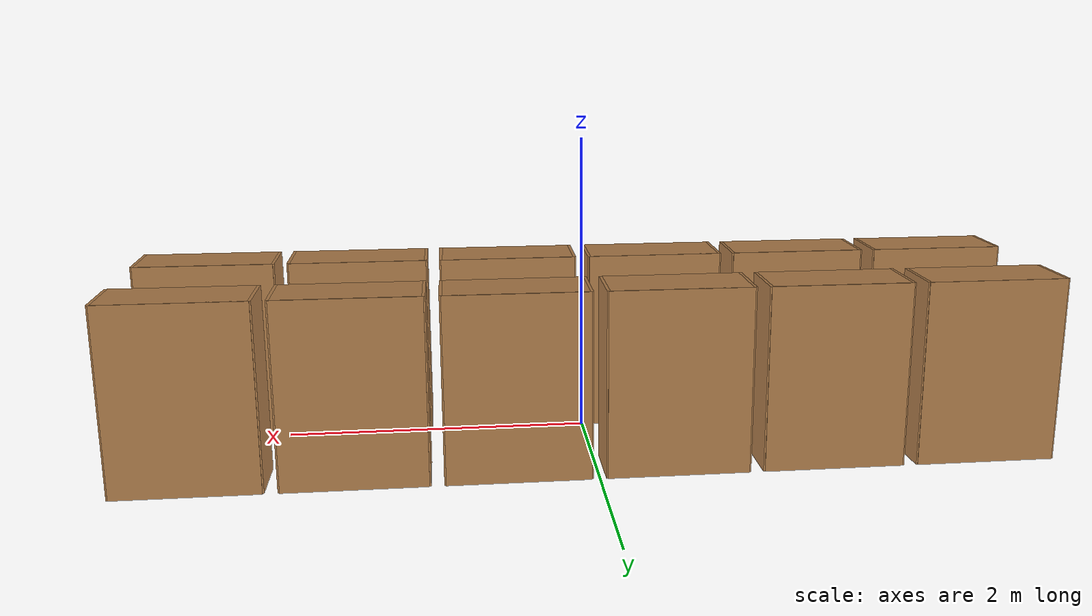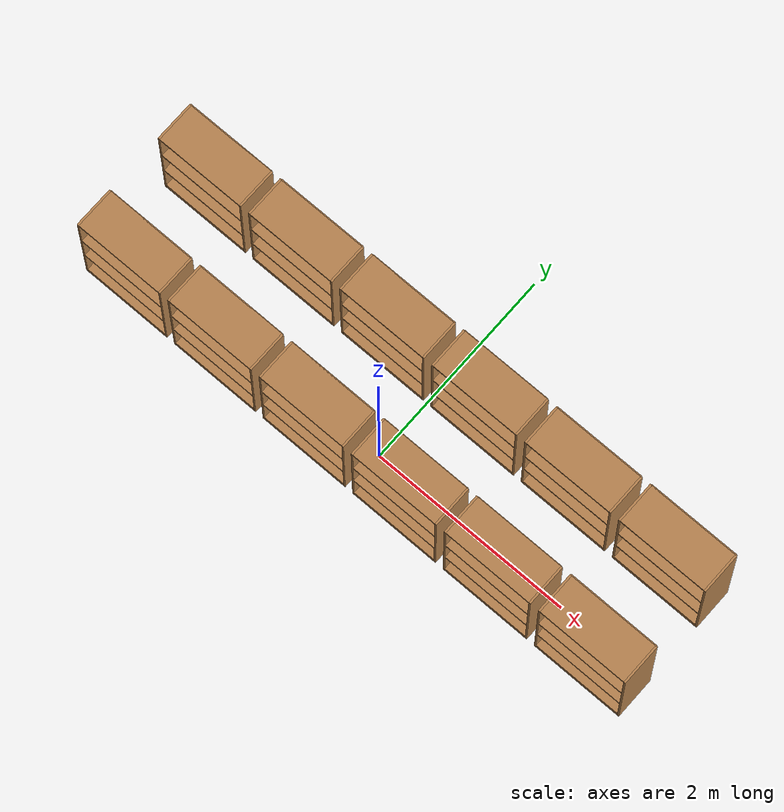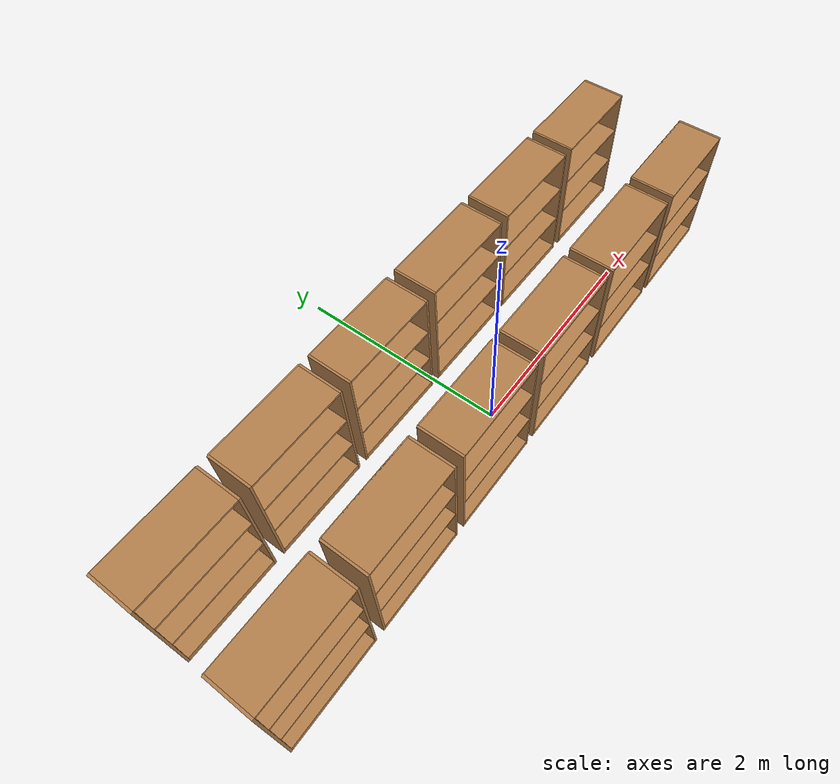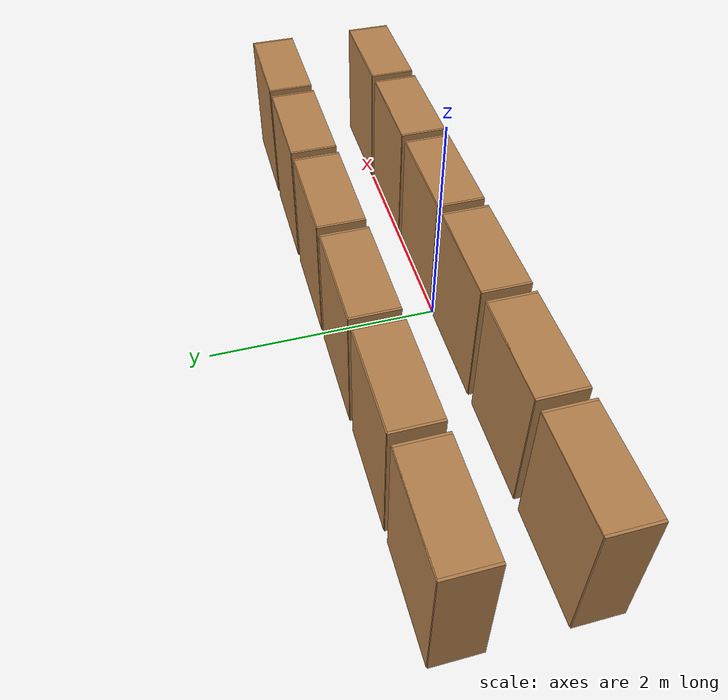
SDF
<sdf version="1.6">
 <model name="5Bookshelves">
  <model name="BookshelfRow_1">
   <model name="bookshelf">
    <static>1</static>
    <link name="link">
     <inertial><mass>1</mass></inertial>
     <collision name="back">
      <pose>0 0.005 0.6 0 -0 0</pose>
      <geometry><box><size>0.9 0.01 1.2</size></box></geometry>
     </collision>
     <visual name="visual1">
      <pose>0 0.005 0.6 0 -0 0</pose>
      <geometry><box><size>0.9 0.01 1.2</size></box></geometry>
      <material>
       <script><uri>file://media/materials/scripts/gazebo.material</uri><name>Gazebo/Wood</name></script>
      </material>
     </visual>
     <collision name="left_side">
      <pose>0.45 -0.195 0.6 0 -0 0</pose>
      <geometry><box><size>0.02 0.4 1.2</size></box></geometry>
     </collision>
     <visual name="visual2">
      <pose>0.45 -0.195 0.6 0 -0 0</pose>
      <geometry><box><size>0.02 0.4 1.2</size></box></geometry>
      <material>
       <script><uri>file://media/materials/scripts/gazebo.material</uri><name>Gazebo/Wood</name></script>
      </material>
     </visual>
     <collision name="right_side">
      <pose>-0.45 -0.195 0.6 0 -0 0</pose>
      <geometry><box><size>0.02 0.4 1.2</size></box></geometry>
     </collision>
     <visual name="visual3">
      <pose>-0.45 -0.195 0.6 0 -0 0</pose>
      <geometry><box><size>0.02 0.4 1.2</size></box></geometry>
      <material>
       <script><uri>file://media/materials/scripts/gazebo.material</uri><name>Gazebo/Wood</name></script>
      </material>
     </visual>
     <collision name="bottom">
      <pose>0 -0.195 0.03 0 -0 0</pose>
      <geometry><box><size>0.88 0.4 0.06</size></box></geometry>
     </collision>
     <visual name="visual4">
      <pose>0 -0.195 0.03 0 -0 0</pose>
      <geometry><box><size>0.88 0.4 0.06</size></box></geometry>
      <material>
       <script><uri>file://media/materials/scripts/gazebo.material</uri><name>Gazebo/Wood</name></script>
      </material>
     </visual>
     <collision name="top">
      <pose>0 -0.195 1.19 0 -0 0</pose>
      <geometry><box><size>0.88 0.4 0.02</size></box></geometry>
     </collision>
     <visual name="visual5">
      <pose>0 -0.195 1.19 0 -0 0</pose>
      <geometry><box><size>0.88 0.4 0.02</size></box></geometry>
      <material>
       <script><uri>file://media/materials/scripts/gazebo.material</uri><name>Gazebo/Wood</name></script>
      </material>
     </visual>
     <collision name="low_shelf">
      <pose>0 -0.195 0.43 0 -0 0</pose>
      <geometry><box><size>0.88 0.4 0.02</size></box></geometry>
     </collision>
     <visual name="visual6">
      <pose>0 -0.195 0.43 0 -0 0</pose>
      <geometry><box><size>0.88 0.4 0.02</size></box></geometry>
      <material>
       <script><uri>file://media/materials/scripts/gazebo.material</uri><name>Gazebo/Wood</name></script>
      </material>
     </visual>
     <collision name="high_shelf">
      <pose>0 -0.195 0.8 0 -0 0</pose>
      <geometry><box><size>0.88 0.4 0.02</size></box></geometry>
     </collision>
     <visual name="visual7">
      <pose>0 -0.195 0.8 0 -0 0</pose>
      <geometry><box><size>0.88 0.4 0.02</size></box></geometry>
      <material>
       <script><uri>file://media/materials/scripts/gazebo.material</uri><name>Gazebo/Wood</name></script>
      </material>
     </visual>
    </link>
    <pose>-2.5 0 0 0 -0 0</pose>
   </model>
   <model name="bookshelf_0">
    <static>1</static>
    <link name="link">
     <inertial><mass>1</mass></inertial>
     <collision name="back">
      <pose>0 0.005 0.6 0 -0 0</pose>
      <geometry><box><size>0.9 0.01 1.2</size></box></geometry>
     </collision>
     <visual name="visual1">
      <pose>0 0.005 0.6 0 -0 0</pose>
      <geometry><box><size>0.9 0.01 1.2</size></box></geometry>
      <material>
       <script><uri>file://media/materials/scripts/gazebo.material</uri><name>Gazebo/Wood</name></script>
      </material>
     </visual>
     <collision name="left_side">
      <pose>0.45 -0.195 0.6 0 -0 0</pose>
      <geometry><box><size>0.02 0.4 1.2</size></box></geometry>
     </collision>
     <visual name="visual2">
      <pose>0.45 -0.195 0.6 0 -0 0</pose>
      <geometry><box><size>0.02 0.4 1.2</size></box></geometry>
      <material>
       <script><uri>file://media/materials/scripts/gazebo.material</uri><name>Gazebo/Wood</name></script>
      </material>
     </visual>
     <collision name="right_side">
      <pose>-0.45 -0.195 0.6 0 -0 0</pose>
      <geometry><box><size>0.02 0.4 1.2</size></box></geometry>
     </collision>
     <visual name="visual3">
      <pose>-0.45 -0.195 0.6 0 -0 0</pose>
      <geometry><box><size>0.02 0.4 1.2</size></box></geometry>
      <material>
       <script><uri>file://media/materials/scripts/gazebo.material</uri><name>Gazebo/Wood</name></script>
      </material>
     </visual>
     <collision name="bottom">
      <pose>0 -0.195 0.03 0 -0 0</pose>
      <geometry><box><size>0.88 0.4 0.06</size></box></geometry>
     </collision>
     <visual name="visual4">
      <pose>0 -0.195 0.03 0 -0 0</pose>
      <geometry><box><size>0.88 0.4 0.06</size></box></geometry>
      <material>
       <script><uri>file://media/materials/scripts/gazebo.material</uri><name>Gazebo/Wood</name></script>
      </material>
     </visual>
     <collision name="top">
      <pose>0 -0.195 1.19 0 -0 0</pose>
      <geometry><box><size>0.88 0.4 0.02</size></box></geometry>
     </collision>
     <visual name="visual5">
      <pose>0 -0.195 1.19 0 -0 0</pose>
      <geometry><box><size>0.88 0.4 0.02</size></box></geometry>
      <material>
       <script><uri>file://media/materials/scripts/gazebo.material</uri><name>Gazebo/Wood</name></script>
      </material>
     </visual>
     <collision name="low_shelf">
      <pose>0 -0.195 0.43 0 -0 0</pose>
      <geometry><box><size>0.88 0.4 0.02</size></box></geometry>
     </collision>
     <visual name="visual6">
      <pose>0 -0.195 0.43 0 -0 0</pose>
      <geometry><box><size>0.88 0.4 0.02</size></box></geometry>
      <material>
       <script><uri>file://media/materials/scripts/gazebo.material</uri><name>Gazebo/Wood</name></script>
      </material>
     </visual>
     <collision name="high_shelf">
      <pose>0 -0.195 0.8 0 -0 0</pose>
      <geometry><box><size>0.88 0.4 0.02</size></box></geometry>
     </collision>
     <visual name="visual7">
      <pose>0 -0.195 0.8 0 -0 0</pose>
      <geometry><box><size>0.88 0.4 0.02</size></box></geometry>
      <material>
       <script><uri>file://media/materials/scripts/gazebo.material</uri><name>Gazebo/Wood</name></script>
      </material>
     </visual>
    </link>
    <pose>-1.5 0 0 0 -0 0</pose>
   </model>
   <model name="bookshelf_1">
    <static>1</static>
    <link name="link">
     <inertial><mass>1</mass></inertial>
     <collision name="back">
      <pose>0 0.005 0.6 0 -0 0</pose>
      <geometry><box><size>0.9 0.01 1.2</size></box></geometry>
     </collision>
     <visual name="visual1">
      <pose>0 0.005 0.6 0 -0 0</pose>
      <geometry><box><size>0.9 0.01 1.2</size></box></geometry>
      <material>
       <script><uri>file://media/materials/scripts/gazebo.material</uri><name>Gazebo/Wood</name></script>
      </material>
     </visual>
     <collision name="left_side">
      <pose>0.45 -0.195 0.6 0 -0 0</pose>
      <geometry><box><size>0.02 0.4 1.2</size></box></geometry>
     </collision>
     <visual name="visual2">
      <pose>0.45 -0.195 0.6 0 -0 0</pose>
      <geometry><box><size>0.02 0.4 1.2</size></box></geometry>
      <material>
       <script><uri>file://media/materials/scripts/gazebo.material</uri><name>Gazebo/Wood</name></script>
      </material>
     </visual>
     <collision name="right_side">
      <pose>-0.45 -0.195 0.6 0 -0 0</pose>
      <geometry><box><size>0.02 0.4 1.2</size></box></geometry>
     </collision>
     <visual name="visual3">
      <pose>-0.45 -0.195 0.6 0 -0 0</pose>
      <geometry><box><size>0.02 0.4 1.2</size></box></geometry>
      <material>
       <script><uri>file://media/materials/scripts/gazebo.material</uri><name>Gazebo/Wood</name></script>
      </material>
     </visual>
     <collision name="bottom">
      <pose>0 -0.195 0.03 0 -0 0</pose>
      <geometry><box><size>0.88 0.4 0.06</size></box></geometry>
     </collision>
     <visual name="visual4">
      <pose>0 -0.195 0.03 0 -0 0</pose>
      <geometry><box><size>0.88 0.4 0.06</size></box></geometry>
      <material>
       <script><uri>file://media/materials/scripts/gazebo.material</uri><name>Gazebo/Wood</name></script>
      </material>
     </visual>
     <collision name="top">
      <pose>0 -0.195 1.19 0 -0 0</pose>
      <geometry><box><size>0.88 0.4 0.02</size></box></geometry>
     </collision>
     <visual name="visual5">
      <pose>0 -0.195 1.19 0 -0 0</pose>
      <geometry><box><size>0.88 0.4 0.02</size></box></geometry>
      <material>
       <script><uri>file://media/materials/scripts/gazebo.material</uri><name>Gazebo/Wood</name></script>
      </material>
     </visual>
     <collision name="low_shelf">
      <pose>0 -0.195 0.43 0 -0 0</pose>
      <geometry><box><size>0.88 0.4 0.02</size></box></geometry>
     </collision>
     <visual name="visual6">
      <pose>0 -0.195 0.43 0 -0 0</pose>
      <geometry><box><size>0.88 0.4 0.02</size></box></geometry>
      <material>
       <script><uri>file://media/materials/scripts/gazebo.material</uri><name>Gazebo/Wood</name></script>
      </material>
     </visual>
     <collision name="high_shelf">
      <pose>0 -0.195 0.8 0 -0 0</pose>
      <geometry><box><size>0.88 0.4 0.02</size></box></geometry>
     </collision>
     <visual name="visual7">
      <pose>0 -0.195 0.8 0 -0 0</pose>
      <geometry><box><size>0.88 0.4 0.02</size></box></geometry>
      <material>
       <script><uri>file://media/materials/scripts/gazebo.material</uri><name>Gazebo/Wood</name></script>
      </material>
     </visual>
    </link>
    <pose>-0.5 0 0 0 -0 0</pose>
   </model>
   <model name="bookshelf_2">
    <static>1</static>
    <link name="link">
     <inertial><mass>1</mass></inertial>
     <collision name="back">
      <pose>0 0.005 0.6 0 -0 0</pose>
      <geometry><box><size>0.9 0.01 1.2</size></box></geometry>
     </collision>
     <visual name="visual1">
      <pose>0 0.005 0.6 0 -0 0</pose>
      <geometry><box><size>0.9 0.01 1.2</size></box></geometry>
      <material>
       <script><uri>file://media/materials/scripts/gazebo.material</uri><name>Gazebo/Wood</name></script>
      </material>
     </visual>
     <collision name="left_side">
      <pose>0.45 -0.195 0.6 0 -0 0</pose>
      <geometry><box><size>0.02 0.4 1.2</size></box></geometry>
     </collision>
     <visual name="visual2">
      <pose>0.45 -0.195 0.6 0 -0 0</pose>
      <geometry><box><size>0.02 0.4 1.2</size></box></geometry>
      <material>
       <script><uri>file://media/materials/scripts/gazebo.material</uri><name>Gazebo/Wood</name></script>
      </material>
     </visual>
     <collision name="right_side">
      <pose>-0.45 -0.195 0.6 0 -0 0</pose>
      <geometry><box><size>0.02 0.4 1.2</size></box></geometry>
     </collision>
     <visual name="visual3">
      <pose>-0.45 -0.195 0.6 0 -0 0</pose>
      <geometry><box><size>0.02 0.4 1.2</size></box></geometry>
      <material>
       <script><uri>file://media/materials/scripts/gazebo.material</uri><name>Gazebo/Wood</name></script>
      </material>
     </visual>
     <collision name="bottom">
      <pose>0 -0.195 0.03 0 -0 0</pose>
      <geometry><box><size>0.88 0.4 0.06</size></box></geometry>
     </collision>
     <visual name="visual4">
      <pose>0 -0.195 0.03 0 -0 0</pose>
      <geometry><box><size>0.88 0.4 0.06</size></box></geometry>
      <material>
       <script><uri>file://media/materials/scripts/gazebo.material</uri><name>Gazebo/Wood</name></script>
      </material>
     </visual>
     <collision name="top">
      <pose>0 -0.195 1.19 0 -0 0</pose>
      <geometry><box><size>0.88 0.4 0.02</size></box></geometry>
     </collision>
     <visual name="visual5">
      <pose>0 -0.195 1.19 0 -0 0</pose>
      <geometry><box><size>0.88 0.4 0.02</size></box></geometry>
      <material>
       <script><uri>file://media/materials/scripts/gazebo.material</uri><name>Gazebo/Wood</name></script>
      </material>
     </visual>
     <collision name="low_shelf">
      <pose>0 -0.195 0.43 0 -0 0</pose>
      <geometry><box><size>0.88 0.4 0.02</size></box></geometry>
     </collision>
     <visual name="visual6">
      <pose>0 -0.195 0.43 0 -0 0</pose>
      <geometry><box><size>0.88 0.4 0.02</size></box></geometry>
      <material>
       <script><uri>file://media/materials/scripts/gazebo.material</uri><name>Gazebo/Wood</name></script>
      </material>
     </visual>
     <collision name="high_shelf">
      <pose>0 -0.195 0.8 0 -0 0</pose>
      <geometry><box><size>0.88 0.4 0.02</size></box></geometry>
     </collision>
     <visual name="visual7">
      <pose>0 -0.195 0.8 0 -0 0</pose>
      <geometry><box><size>0.88 0.4 0.02</size></box></geometry>
      <material>
       <script><uri>file://media/materials/scripts/gazebo.material</uri><name>Gazebo/Wood</name></script>
      </material>
     </visual>
    </link>
    <pose>0.5 0 0 0 -0 0</pose>
   </model>
   <model name="bookshelf_3">
    <static>1</static>
    <link name="link">
     <inertial><mass>1</mass></inertial>
     <collision name="back">
      <pose>0 0.005 0.6 0 -0 0</pose>
      <geometry><box><size>0.9 0.01 1.2</size></box></geometry>
     </collision>
     <visual name="visual1">
      <pose>0 0.005 0.6 0 -0 0</pose>
      <geometry><box><size>0.9 0.01 1.2</size></box></geometry>
      <material>
       <script><uri>file://media/materials/scripts/gazebo.material</uri><name>Gazebo/Wood</name></script>
      </material>
     </visual>
     <collision name="left_side">
      <pose>0.45 -0.195 0.6 0 -0 0</pose>
      <geometry><box><size>0.02 0.4 1.2</size></box></geometry>
     </collision>
     <visual name="visual2">
      <pose>0.45 -0.195 0.6 0 -0 0</pose>
      <geometry><box><size>0.02 0.4 1.2</size></box></geometry>
      <material>
       <script><uri>file://media/materials/scripts/gazebo.material</uri><name>Gazebo/Wood</name></script>
      </material>
     </visual>
     <collision name="right_side">
      <pose>-0.45 -0.195 0.6 0 -0 0</pose>
      <geometry><box><size>0.02 0.4 1.2</size></box></geometry>
     </collision>
     <visual name="visual3">
      <pose>-0.45 -0.195 0.6 0 -0 0</pose>
      <geometry><box><size>0.02 0.4 1.2</size></box></geometry>
      <material>
       <script><uri>file://media/materials/scripts/gazebo.material</uri><name>Gazebo/Wood</name></script>
      </material>
     </visual>
     <collision name="bottom">
      <pose>0 -0.195 0.03 0 -0 0</pose>
      <geometry><box><size>0.88 0.4 0.06</size></box></geometry>
     </collision>
     <visual name="visual4">
      <pose>0 -0.195 0.03 0 -0 0</pose>
      <geometry><box><size>0.88 0.4 0.06</size></box></geometry>
      <material>
       <script><uri>file://media/materials/scripts/gazebo.material</uri><name>Gazebo/Wood</name></script>
      </material>
     </visual>
     <collision name="top">
      <pose>0 -0.195 1.19 0 -0 0</pose>
      <geometry><box><size>0.88 0.4 0.02</size></box></geometry>
     </collision>
     <visual name="visual5">
      <pose>0 -0.195 1.19 0 -0 0</pose>
      <geometry><box><size>0.88 0.4 0.02</size></box></geometry>
      <material>
       <script><uri>file://media/materials/scripts/gazebo.material</uri><name>Gazebo/Wood</name></script>
      </material>
     </visual>
     <collision name="low_shelf">
      <pose>0 -0.195 0.43 0 -0 0</pose>
      <geometry><box><size>0.88 0.4 0.02</size></box></geometry>
     </collision>
     <visual name="visual6">
      <pose>0 -0.195 0.43 0 -0 0</pose>
      <geometry><box><size>0.88 0.4 0.02</size></box></geometry>
      <material>
       <script><uri>file://media/materials/scripts/gazebo.material</uri><name>Gazebo/Wood</name></script>
      </material>
     </visual>
     <collision name="high_shelf">
      <pose>0 -0.195 0.8 0 -0 0</pose>
      <geometry><box><size>0.88 0.4 0.02</size></box></geometry>
     </collision>
     <visual name="visual7">
      <pose>0 -0.195 0.8 0 -0 0</pose>
      <geometry><box><size>0.88 0.4 0.02</size></box></geometry>
      <material>
       <script><uri>file://media/materials/scripts/gazebo.material</uri><name>Gazebo/Wood</name></script>
      </material>
     </visual>
    </link>
    <pose>1.5 0 0 0 -0 0</pose>
   </model>
   <model name="bookshelf_4">
    <static>1</static>
    <link name="link">
     <inertial><mass>1</mass></inertial>
     <collision name="back">
      <pose>0 0.005 0.6 0 -0 0</pose>
      <geometry><box><size>0.9 0.01 1.2</size></box></geometry>
     </collision>
     <visual name="visual1">
      <pose>0 0.005 0.6 0 -0 0</pose>
      <geometry><box><size>0.9 0.01 1.2</size></box></geometry>
      <material>
       <script><uri>file://media/materials/scripts/gazebo.material</uri><name>Gazebo/Wood</name></script>
      </material>
     </visual>
     <collision name="left_side">
      <pose>0.45 -0.195 0.6 0 -0 0</pose>
      <geometry><box><size>0.02 0.4 1.2</size></box></geometry>
     </collision>
     <visual name="visual2">
      <pose>0.45 -0.195 0.6 0 -0 0</pose>
      <geometry><box><size>0.02 0.4 1.2</size></box></geometry>
      <material>
       <script><uri>file://media/materials/scripts/gazebo.material</uri><name>Gazebo/Wood</name></script>
      </material>
     </visual>
     <collision name="right_side">
      <pose>-0.45 -0.195 0.6 0 -0 0</pose>
      <geometry><box><size>0.02 0.4 1.2</size></box></geometry>
     </collision>
     <visual name="visual3">
      <pose>-0.45 -0.195 0.6 0 -0 0</pose>
      <geometry><box><size>0.02 0.4 1.2</size></box></geometry>
      <material>
       <script><uri>file://media/materials/scripts/gazebo.material</uri><name>Gazebo/Wood</name></script>
      </material>
     </visual>
     <collision name="bottom">
      <pose>0 -0.195 0.03 0 -0 0</pose>
      <geometry><box><size>0.88 0.4 0.06</size></box></geometry>
     </collision>
     <visual name="visual4">
      <pose>0 -0.195 0.03 0 -0 0</pose>
      <geometry><box><size>0.88 0.4 0.06</size></box></geometry>
      <material>
       <script><uri>file://media/materials/scripts/gazebo.material</uri><name>Gazebo/Wood</name></script>
      </material>
     </visual>
     <collision name="top">
      <pose>0 -0.195 1.19 0 -0 0</pose>
      <geometry><box><size>0.88 0.4 0.02</size></box></geometry>
     </collision>
     <visual name="visual5">
      <pose>0 -0.195 1.19 0 -0 0</pose>
      <geometry><box><size>0.88 0.4 0.02</size></box></geometry>
      <material>
       <script><uri>file://media/materials/scripts/gazebo.material</uri><name>Gazebo/Wood</name></script>
      </material>
     </visual>
     <collision name="low_shelf">
      <pose>0 -0.195 0.43 0 -0 0</pose>
      <geometry><box><size>0.88 0.4 0.02</size></box></geometry>
     </collision>
     <visual name="visual6">
      <pose>0 -0.195 0.43 0 -0 0</pose>
      <geometry><box><size>0.88 0.4 0.02</size></box></geometry>
      <material>
       <script><uri>file://media/materials/scripts/gazebo.material</uri><name>Gazebo/Wood</name></script>
      </material>
     </visual>
     <collision name="high_shelf">
      <pose>0 -0.195 0.8 0 -0 0</pose>
      <geometry><box><size>0.88 0.4 0.02</size></box></geometry>
     </collision>
     <visual name="visual7">
      <pose>0 -0.195 0.8 0 -0 0</pose>
      <geometry><box><size>0.88 0.4 0.02</size></box></geometry>
      <material>
       <script><uri>file://media/materials/scripts/gazebo.material</uri><name>Gazebo/Wood</name></script>
      </material>
     </visual>
    </link>
    <pose>2.5 0 0 0 -0 0</pose>
   </model>
   <static>0</static>
  </model>
  <model name="BookshelfRow_2">
   <model name="bookshelf">
    <static>1</static>
    <link name="link">
     <inertial><mass>1</mass></inertial>
     <collision name="back">
      <pose>0 0.005 0.6 0 -0 0</pose>
      <geometry><box><size>0.9 0.01 1.2</size></box></geometry>
     </collision>
     <visual name="visual1">
      <pose>0 0.005 0.6 0 -0 0</pose>
      <geometry><box><size>0.9 0.01 1.2</size></box></geometry>
      <material>
       <script><uri>file://media/materials/scripts/gazebo.material</uri><name>Gazebo/Wood</name></script>
      </material>
     </visual>
     <collision name="left_side">
      <pose>0.45 -0.195 0.6 0 -0 0</pose>
      <geometry><box><size>0.02 0.4 1.2</size></box></geometry>
     </collision>
     <visual name="visual2">
      <pose>0.45 -0.195 0.6 0 -0 0</pose>
      <geometry><box><size>0.02 0.4 1.2</size></box></geometry>
      <material>
       <script><uri>file://media/materials/scripts/gazebo.material</uri><name>Gazebo/Wood</name></script>
      </material>
     </visual>
     <collision name="right_side">
      <pose>-0.45 -0.195 0.6 0 -0 0</pose>
      <geometry><box><size>0.02 0.4 1.2</size></box></geometry>
     </collision>
     <visual name="visual3">
      <pose>-0.45 -0.195 0.6 0 -0 0</pose>
      <geometry><box><size>0.02 0.4 1.2</size></box></geometry>
      <material>
       <script><uri>file://media/materials/scripts/gazebo.material</uri><name>Gazebo/Wood</name></script>
      </material>
     </visual>
     <collision name="bottom">
      <pose>0 -0.195 0.03 0 -0 0</pose>
      <geometry><box><size>0.88 0.4 0.06</size></box></geometry>
     </collision>
     <visual name="visual4">
      <pose>0 -0.195 0.03 0 -0 0</pose>
      <geometry><box><size>0.88 0.4 0.06</size></box></geometry>
      <material>
       <script><uri>file://media/materials/scripts/gazebo.material</uri><name>Gazebo/Wood</name></script>
      </material>
     </visual>
     <collision name="top">
      <pose>0 -0.195 1.19 0 -0 0</pose>
      <geometry><box><size>0.88 0.4 0.02</size></box></geometry>
     </collision>
     <visual name="visual5">
      <pose>0 -0.195 1.19 0 -0 0</pose>
      <geometry><box><size>0.88 0.4 0.02</size></box></geometry>
      <material>
       <script><uri>file://media/materials/scripts/gazebo.material</uri><name>Gazebo/Wood</name></script>
      </material>
     </visual>
     <collision name="low_shelf">
      <pose>0 -0.195 0.43 0 -0 0</pose>
      <geometry><box><size>0.88 0.4 0.02</size></box></geometry>
     </collision>
     <visual name="visual6">
      <pose>0 -0.195 0.43 0 -0 0</pose>
      <geometry><box><size>0.88 0.4 0.02</size></box></geometry>
      <material>
       <script><uri>file://media/materials/scripts/gazebo.material</uri><name>Gazebo/Wood</name></script>
      </material>
     </visual>
     <collision name="high_shelf">
      <pose>0 -0.195 0.8 0 -0 0</pose>
      <geometry><box><size>0.88 0.4 0.02</size></box></geometry>
     </collision>
     <visual name="visual7">
      <pose>0 -0.195 0.8 0 -0 0</pose>
      <geometry><box><size>0.88 0.4 0.02</size></box></geometry>
      <material>
       <script><uri>file://media/materials/scripts/gazebo.material</uri><name>Gazebo/Wood</name></script>
      </material>
     </visual>
    </link>
    <pose>-2.5 0 0 0 -0 0</pose>
   </model>
   <model name="bookshelf_0">
    <static>1</static>
    <link name="link">
     <inertial><mass>1</mass></inertial>
     <collision name="back">
      <pose>0 0.005 0.6 0 -0 0</pose>
      <geometry><box><size>0.9 0.01 1.2</size></box></geometry>
     </collision>
     <visual name="visual1">
      <pose>0 0.005 0.6 0 -0 0</pose>
      <geometry><box><size>0.9 0.01 1.2</size></box></geometry>
      <material>
       <script><uri>file://media/materials/scripts/gazebo.material</uri><name>Gazebo/Wood</name></script>
      </material>
     </visual>
     <collision name="left_side">
      <pose>0.45 -0.195 0.6 0 -0 0</pose>
      <geometry><box><size>0.02 0.4 1.2</size></box></geometry>
     </collision>
     <visual name="visual2">
      <pose>0.45 -0.195 0.6 0 -0 0</pose>
      <geometry><box><size>0.02 0.4 1.2</size></box></geometry>
      <material>
       <script><uri>file://media/materials/scripts/gazebo.material</uri><name>Gazebo/Wood</name></script>
      </material>
     </visual>
     <collision name="right_side">
      <pose>-0.45 -0.195 0.6 0 -0 0</pose>
      <geometry><box><size>0.02 0.4 1.2</size></box></geometry>
     </collision>
     <visual name="visual3">
      <pose>-0.45 -0.195 0.6 0 -0 0</pose>
      <geometry><box><size>0.02 0.4 1.2</size></box></geometry>
      <material>
       <script><uri>file://media/materials/scripts/gazebo.material</uri><name>Gazebo/Wood</name></script>
      </material>
     </visual>
     <collision name="bottom">
      <pose>0 -0.195 0.03 0 -0 0</pose>
      <geometry><box><size>0.88 0.4 0.06</size></box></geometry>
     </collision>
     <visual name="visual4">
      <pose>0 -0.195 0.03 0 -0 0</pose>
      <geometry><box><size>0.88 0.4 0.06</size></box></geometry>
      <material>
       <script><uri>file://media/materials/scripts/gazebo.material</uri><name>Gazebo/Wood</name></script>
      </material>
     </visual>
     <collision name="top">
      <pose>0 -0.195 1.19 0 -0 0</pose>
      <geometry><box><size>0.88 0.4 0.02</size></box></geometry>
     </collision>
     <visual name="visual5">
      <pose>0 -0.195 1.19 0 -0 0</pose>
      <geometry><box><size>0.88 0.4 0.02</size></box></geometry>
      <material>
       <script><uri>file://media/materials/scripts/gazebo.material</uri><name>Gazebo/Wood</name></script>
      </material>
     </visual>
     <collision name="low_shelf">
      <pose>0 -0.195 0.43 0 -0 0</pose>
      <geometry><box><size>0.88 0.4 0.02</size></box></geometry>
     </collision>
     <visual name="visual6">
      <pose>0 -0.195 0.43 0 -0 0</pose>
      <geometry><box><size>0.88 0.4 0.02</size></box></geometry>
      <material>
       <script><uri>file://media/materials/scripts/gazebo.material</uri><name>Gazebo/Wood</name></script>
      </material>
     </visual>
     <collision name="high_shelf">
      <pose>0 -0.195 0.8 0 -0 0</pose>
      <geometry><box><size>0.88 0.4 0.02</size></box></geometry>
     </collision>
     <visual name="visual7">
      <pose>0 -0.195 0.8 0 -0 0</pose>
      <geometry><box><size>0.88 0.4 0.02</size></box></geometry>
      <material>
       <script><uri>file://media/materials/scripts/gazebo.material</uri><name>Gazebo/Wood</name></script>
      </material>
     </visual>
    </link>
    <pose>-1.5 0 0 0 -0 0</pose>
   </model>
   <model name="bookshelf_1">
    <static>1</static>
    <link name="link">
     <inertial><mass>1</mass></inertial>
     <collision name="back">
      <pose>0 0.005 0.6 0 -0 0</pose>
      <geometry><box><size>0.9 0.01 1.2</size></box></geometry>
     </collision>
     <visual name="visual1">
      <pose>0 0.005 0.6 0 -0 0</pose>
      <geometry><box><size>0.9 0.01 1.2</size></box></geometry>
      <material>
       <script><uri>file://media/materials/scripts/gazebo.material</uri><name>Gazebo/Wood</name></script>
      </material>
     </visual>
     <collision name="left_side">
      <pose>0.45 -0.195 0.6 0 -0 0</pose>
      <geometry><box><size>0.02 0.4 1.2</size></box></geometry>
     </collision>
     <visual name="visual2">
      <pose>0.45 -0.195 0.6 0 -0 0</pose>
      <geometry><box><size>0.02 0.4 1.2</size></box></geometry>
      <material>
       <script><uri>file://media/materials/scripts/gazebo.material</uri><name>Gazebo/Wood</name></script>
      </material>
     </visual>
     <collision name="right_side">
      <pose>-0.45 -0.195 0.6 0 -0 0</pose>
      <geometry><box><size>0.02 0.4 1.2</size></box></geometry>
     </collision>
     <visual name="visual3">
      <pose>-0.45 -0.195 0.6 0 -0 0</pose>
      <geometry><box><size>0.02 0.4 1.2</size></box></geometry>
      <material>
       <script><uri>file://media/materials/scripts/gazebo.material</uri><name>Gazebo/Wood</name></script>
      </material>
     </visual>
     <collision name="bottom">
      <pose>0 -0.195 0.03 0 -0 0</pose>
      <geometry><box><size>0.88 0.4 0.06</size></box></geometry>
     </collision>
     <visual name="visual4">
      <pose>0 -0.195 0.03 0 -0 0</pose>
      <geometry><box><size>0.88 0.4 0.06</size></box></geometry>
      <material>
       <script><uri>file://media/materials/scripts/gazebo.material</uri><name>Gazebo/Wood</name></script>
      </material>
     </visual>
     <collision name="top">
      <pose>0 -0.195 1.19 0 -0 0</pose>
      <geometry><box><size>0.88 0.4 0.02</size></box></geometry>
     </collision>
     <visual name="visual5">
      <pose>0 -0.195 1.19 0 -0 0</pose>
      <geometry><box><size>0.88 0.4 0.02</size></box></geometry>
      <material>
       <script><uri>file://media/materials/scripts/gazebo.material</uri><name>Gazebo/Wood</name></script>
      </material>
     </visual>
     <collision name="low_shelf">
      <pose>0 -0.195 0.43 0 -0 0</pose>
      <geometry><box><size>0.88 0.4 0.02</size></box></geometry>
     </collision>
     <visual name="visual6">
      <pose>0 -0.195 0.43 0 -0 0</pose>
      <geometry><box><size>0.88 0.4 0.02</size></box></geometry>
      <material>
       <script><uri>file://media/materials/scripts/gazebo.material</uri><name>Gazebo/Wood</name></script>
      </material>
     </visual>
     <collision name="high_shelf">
      <pose>0 -0.195 0.8 0 -0 0</pose>
      <geometry><box><size>0.88 0.4 0.02</size></box></geometry>
     </collision>
     <visual name="visual7">
      <pose>0 -0.195 0.8 0 -0 0</pose>
      <geometry><box><size>0.88 0.4 0.02</size></box></geometry>
      <material>
       <script><uri>file://media/materials/scripts/gazebo.material</uri><name>Gazebo/Wood</name></script>
      </material>
     </visual>
    </link>
    <pose>-0.5 0 0 0 -0 0</pose>
   </model>
   <model name="bookshelf_2">
    <static>1</static>
    <link name="link">
     <inertial><mass>1</mass></inertial>
     <collision name="back">
      <pose>0 0.005 0.6 0 -0 0</pose>
      <geometry><box><size>0.9 0.01 1.2</size></box></geometry>
     </collision>
     <visual name="visual1">
      <pose>0 0.005 0.6 0 -0 0</pose>
      <geometry><box><size>0.9 0.01 1.2</size></box></geometry>
      <material>
       <script><uri>file://media/materials/scripts/gazebo.material</uri><name>Gazebo/Wood</name></script>
      </material>
     </visual>
     <collision name="left_side">
      <pose>0.45 -0.195 0.6 0 -0 0</pose>
      <geometry><box><size>0.02 0.4 1.2</size></box></geometry>
     </collision>
     <visual name="visual2">
      <pose>0.45 -0.195 0.6 0 -0 0</pose>
      <geometry><box><size>0.02 0.4 1.2</size></box></geometry>
      <material>
       <script><uri>file://media/materials/scripts/gazebo.material</uri><name>Gazebo/Wood</name></script>
      </material>
     </visual>
     <collision name="right_side">
      <pose>-0.45 -0.195 0.6 0 -0 0</pose>
      <geometry><box><size>0.02 0.4 1.2</size></box></geometry>
     </collision>
     <visual name="visual3">
      <pose>-0.45 -0.195 0.6 0 -0 0</pose>
      <geometry><box><size>0.02 0.4 1.2</size></box></geometry>
      <material>
       <script><uri>file://media/materials/scripts/gazebo.material</uri><name>Gazebo/Wood</name></script>
      </material>
     </visual>
     <collision name="bottom">
      <pose>0 -0.195 0.03 0 -0 0</pose>
      <geometry><box><size>0.88 0.4 0.06</size></box></geometry>
     </collision>
     <visual name="visual4">
      <pose>0 -0.195 0.03 0 -0 0</pose>
      <geometry><box><size>0.88 0.4 0.06</size></box></geometry>
      <material>
       <script><uri>file://media/materials/scripts/gazebo.material</uri><name>Gazebo/Wood</name></script>
      </material>
     </visual>
     <collision name="top">
      <pose>0 -0.195 1.19 0 -0 0</pose>
      <geometry><box><size>0.88 0.4 0.02</size></box></geometry>
     </collision>
     <visual name="visual5">
      <pose>0 -0.195 1.19 0 -0 0</pose>
      <geometry><box><size>0.88 0.4 0.02</size></box></geometry>
      <material>
       <script><uri>file://media/materials/scripts/gazebo.material</uri><name>Gazebo/Wood</name></script>
      </material>
     </visual>
     <collision name="low_shelf">
      <pose>0 -0.195 0.43 0 -0 0</pose>
      <geometry><box><size>0.88 0.4 0.02</size></box></geometry>
     </collision>
     <visual name="visual6">
      <pose>0 -0.195 0.43 0 -0 0</pose>
      <geometry><box><size>0.88 0.4 0.02</size></box></geometry>
      <material>
       <script><uri>file://media/materials/scripts/gazebo.material</uri><name>Gazebo/Wood</name></script>
      </material>
     </visual>
     <collision name="high_shelf">
      <pose>0 -0.195 0.8 0 -0 0</pose>
      <geometry><box><size>0.88 0.4 0.02</size></box></geometry>
     </collision>
     <visual name="visual7">
      <pose>0 -0.195 0.8 0 -0 0</pose>
      <geometry><box><size>0.88 0.4 0.02</size></box></geometry>
      <material>
       <script><uri>file://media/materials/scripts/gazebo.material</uri><name>Gazebo/Wood</name></script>
      </material>
     </visual>
    </link>
    <pose>0.5 0 0 0 -0 0</pose>
   </model>
   <model name="bookshelf_3">
    <static>1</static>
    <link name="link">
     <inertial><mass>1</mass></inertial>
     <collision name="back">
      <pose>0 0.005 0.6 0 -0 0</pose>
      <geometry><box><size>0.9 0.01 1.2</size></box></geometry>
     </collision>
     <visual name="visual1">
      <pose>0 0.005 0.6 0 -0 0</pose>
      <geometry><box><size>0.9 0.01 1.2</size></box></geometry>
      <material>
       <script><uri>file://media/materials/scripts/gazebo.material</uri><name>Gazebo/Wood</name></script>
      </material>
     </visual>
     <collision name="left_side">
      <pose>0.45 -0.195 0.6 0 -0 0</pose>
      <geometry><box><size>0.02 0.4 1.2</size></box></geometry>
     </collision>
     <visual name="visual2">
      <pose>0.45 -0.195 0.6 0 -0 0</pose>
      <geometry><box><size>0.02 0.4 1.2</size></box></geometry>
      <material>
       <script><uri>file://media/materials/scripts/gazebo.material</uri><name>Gazebo/Wood</name></script>
      </material>
     </visual>
     <collision name="right_side">
      <pose>-0.45 -0.195 0.6 0 -0 0</pose>
      <geometry><box><size>0.02 0.4 1.2</size></box></geometry>
     </collision>
     <visual name="visual3">
      <pose>-0.45 -0.195 0.6 0 -0 0</pose>
      <geometry><box><size>0.02 0.4 1.2</size></box></geometry>
      <material>
       <script><uri>file://media/materials/scripts/gazebo.material</uri><name>Gazebo/Wood</name></script>
      </material>
     </visual>
     <collision name="bottom">
      <pose>0 -0.195 0.03 0 -0 0</pose>
      <geometry><box><size>0.88 0.4 0.06</size></box></geometry>
     </collision>
     <visual name="visual4">
      <pose>0 -0.195 0.03 0 -0 0</pose>
      <geometry><box><size>0.88 0.4 0.06</size></box></geometry>
      <material>
       <script><uri>file://media/materials/scripts/gazebo.material</uri><name>Gazebo/Wood</name></script>
      </material>
     </visual>
     <collision name="top">
      <pose>0 -0.195 1.19 0 -0 0</pose>
      <geometry><box><size>0.88 0.4 0.02</size></box></geometry>
     </collision>
     <visual name="visual5">
      <pose>0 -0.195 1.19 0 -0 0</pose>
      <geometry><box><size>0.88 0.4 0.02</size></box></geometry>
      <material>
       <script><uri>file://media/materials/scripts/gazebo.material</uri><name>Gazebo/Wood</name></script>
      </material>
     </visual>
     <collision name="low_shelf">
      <pose>0 -0.195 0.43 0 -0 0</pose>
      <geometry><box><size>0.88 0.4 0.02</size></box></geometry>
     </collision>
     <visual name="visual6">
      <pose>0 -0.195 0.43 0 -0 0</pose>
      <geometry><box><size>0.88 0.4 0.02</size></box></geometry>
      <material>
       <script><uri>file://media/materials/scripts/gazebo.material</uri><name>Gazebo/Wood</name></script>
      </material>
     </visual>
     <collision name="high_shelf">
      <pose>0 -0.195 0.8 0 -0 0</pose>
      <geometry><box><size>0.88 0.4 0.02</size></box></geometry>
     </collision>
     <visual name="visual7">
      <pose>0 -0.195 0.8 0 -0 0</pose>
      <geometry><box><size>0.88 0.4 0.02</size></box></geometry>
      <material>
       <script><uri>file://media/materials/scripts/gazebo.material</uri><name>Gazebo/Wood</name></script>
      </material>
     </visual>
    </link>
    <pose>1.5 0 0 0 -0 0</pose>
   </model>
   <model name="bookshelf_4">
    <static>1</static>
    <link name="link">
     <inertial><mass>1</mass></inertial>
     <collision name="back">
      <pose>0 0.005 0.6 0 -0 0</pose>
      <geometry><box><size>0.9 0.01 1.2</size></box></geometry>
     </collision>
     <visual name="visual1">
      <pose>0 0.005 0.6 0 -0 0</pose>
      <geometry><box><size>0.9 0.01 1.2</size></box></geometry>
      <material>
       <script><uri>file://media/materials/scripts/gazebo.material</uri><name>Gazebo/Wood</name></script>
      </material>
     </visual>
     <collision name="left_side">
      <pose>0.45 -0.195 0.6 0 -0 0</pose>
      <geometry><box><size>0.02 0.4 1.2</size></box></geometry>
     </collision>
     <visual name="visual2">
      <pose>0.45 -0.195 0.6 0 -0 0</pose>
      <geometry><box><size>0.02 0.4 1.2</size></box></geometry>
      <material>
       <script><uri>file://media/materials/scripts/gazebo.material</uri><name>Gazebo/Wood</name></script>
      </material>
     </visual>
     <collision name="right_side">
      <pose>-0.45 -0.195 0.6 0 -0 0</pose>
      <geometry><box><size>0.02 0.4 1.2</size></box></geometry>
     </collision>
     <visual name="visual3">
      <pose>-0.45 -0.195 0.6 0 -0 0</pose>
      <geometry><box><size>0.02 0.4 1.2</size></box></geometry>
      <material>
       <script><uri>file://media/materials/scripts/gazebo.material</uri><name>Gazebo/Wood</name></script>
      </material>
     </visual>
     <collision name="bottom">
      <pose>0 -0.195 0.03 0 -0 0</pose>
      <geometry><box><size>0.88 0.4 0.06</size></box></geometry>
     </collision>
     <visual name="visual4">
      <pose>0 -0.195 0.03 0 -0 0</pose>
      <geometry><box><size>0.88 0.4 0.06</size></box></geometry>
      <material>
       <script><uri>file://media/materials/scripts/gazebo.material</uri><name>Gazebo/Wood</name></script>
      </material>
     </visual>
     <collision name="top">
      <pose>0 -0.195 1.19 0 -0 0</pose>
      <geometry><box><size>0.88 0.4 0.02</size></box></geometry>
     </collision>
     <visual name="visual5">
      <pose>0 -0.195 1.19 0 -0 0</pose>
      <geometry><box><size>0.88 0.4 0.02</size></box></geometry>
      <material>
       <script><uri>file://media/materials/scripts/gazebo.material</uri><name>Gazebo/Wood</name></script>
      </material>
     </visual>
     <collision name="low_shelf">
      <pose>0 -0.195 0.43 0 -0 0</pose>
      <geometry><box><size>0.88 0.4 0.02</size></box></geometry>
     </collision>
     <visual name="visual6">
      <pose>0 -0.195 0.43 0 -0 0</pose>
      <geometry><box><size>0.88 0.4 0.02</size></box></geometry>
      <material>
       <script><uri>file://media/materials/scripts/gazebo.material</uri><name>Gazebo/Wood</name></script>
      </material>
     </visual>
     <collision name="high_shelf">
      <pose>0 -0.195 0.8 0 -0 0</pose>
      <geometry><box><size>0.88 0.4 0.02</size></box></geometry>
     </collision>
     <visual name="visual7">
      <pose>0 -0.195 0.8 0 -0 0</pose>
      <geometry><box><size>0.88 0.4 0.02</size></box></geometry>
      <material>
       <script><uri>file://media/materials/scripts/gazebo.material</uri><name>Gazebo/Wood</name></script>
      </material>
     </visual>
    </link>
    <pose>2.5 0 0 0 -0 0</pose>
   </model>
   <static>0</static>
   <pose>0 1 0 0 -0 0</pose>
  </model>
  <static>0</static>
 </model>
</sdf>
